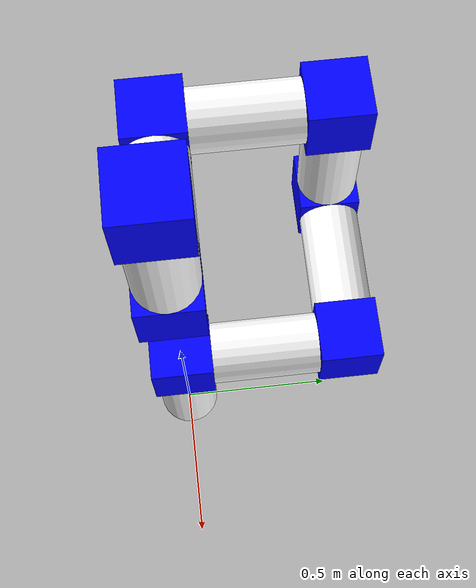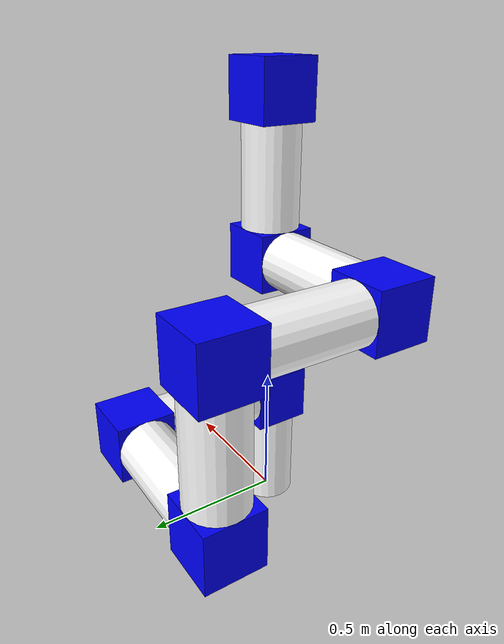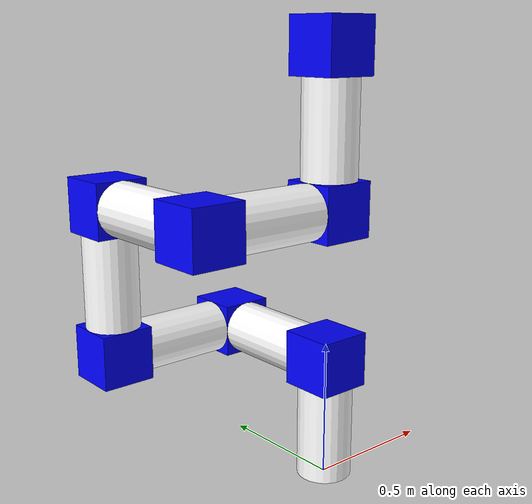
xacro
<?xml version="1.0" ?>
<!-- |    This document was autogenerated by xacro from unibot.xacro                   | -->
<!-- |    EDITING THIS FILE BY HAND IS NOT RECOMMENDED                                 | -->
<robot name="unibot">
  <!-- Tail Link -->
  <link name="a1_tail">
    <inertial>
      <origin rpy="0.0 0.0 0.0" xyz="0.0 0.0 0.25"/>
      <mass value="1.0"/>
      <inertia ixx="1.0" ixy="0.0" ixz="0.0" iyy="1.0" iyz="0.0" izz="1.0"/>
    </inertial>
    <visual>
      <origin rpy="0.0 0.0 0.0" xyz="0.0 0.0 0.25"/>
      <geometry>
        <cylinder length="0.5" radius="0.1"/>
      </geometry>
      <material name="White">
        <color rgba="1.0 1.0 1.0 1.0"/>
      </material>
    </visual>
    <collision>
      <origin rpy="0.0 0.0 0.0" xyz="0.0 0.0 0.25"/>
      <geometry>
        <cylinder length="0.5" radius="0.1"/>
      </geometry>
    </collision>
  </link>
  <gazebo reference="a1_tail">
    <selfCollide>true</selfCollide>
    <material>Gazebo/White</material>
  </gazebo>
  <!-- Head Link -->
  <link name="a1_head">
    <inertial>
      <origin rpy="0.0 0.0 0.0" xyz="0.0 0.0 0.0"/>
      <mass value="1.0"/>
      <inertia ixx="1.0" ixy="0.0" ixz="0.0" iyy="1.0" iyz="0.0" izz="1.0"/>
    </inertial>
    <visual>
      <origin rpy="0.0 0.0 0.0" xyz="0.0 0.0 0.1"/>
      <geometry>
        <box size="0.2 0.2 0.2"/>
      </geometry>
      <material name="Blue">
        <color rgba="0.0 0.0 1.0 1.0"/>
      </material>
    </visual>
    <collision>
      <origin rpy="0.0 0.0 0.0" xyz="0.0 0.0 0.1"/>
      <geometry>
        <box size="0.2 0.2 0.2"/>
      </geometry>
    </collision>
  </link>
  <gazebo reference="a1_head">
    <selfCollide>true</selfCollide>
    <material>Gazebo/Blue</material>
  </gazebo>
  <!-- Joint -->
  <joint name="a1_joint" type="revolute">
    <origin rpy="0.0 0.0 0.0" xyz="0.0 0.0 0.35"/>
    <parent link="a1_tail"/>
    <child link="a1_head"/>
    <axis xyz="0.0 0.0 1.0"/>
    <limit effort="1000000" lower="-1.5707963267948966" upper="1.5707963267948966" velocity="1000000"/>
  </joint>
  <!-- Tail Link -->
  <link name="a2_tail">
    <inertial>
      <origin rpy="0.0 0.0 0.0" xyz="0.0 0.0 0.25"/>
      <mass value="1.0"/>
      <inertia ixx="1.0" ixy="0.0" ixz="0.0" iyy="1.0" iyz="0.0" izz="1.0"/>
    </inertial>
    <visual>
      <origin rpy="0.0 0.0 0.0" xyz="0.0 0.0 0.25"/>
      <geometry>
        <cylinder length="0.5" radius="0.1"/>
      </geometry>
      <material name="White">
        <color rgba="1.0 1.0 1.0 1.0"/>
      </material>
    </visual>
    <collision>
      <origin rpy="0.0 0.0 0.0" xyz="0.0 0.0 0.25"/>
      <geometry>
        <cylinder length="0.5" radius="0.1"/>
      </geometry>
    </collision>
  </link>
  <gazebo reference="a2_tail">
    <selfCollide>true</selfCollide>
    <material>Gazebo/White</material>
  </gazebo>
  <!-- Head Link -->
  <link name="a2_head">
    <inertial>
      <origin rpy="0.0 0.0 0.0" xyz="0.0 0.0 0.0"/>
      <mass value="1.0"/>
      <inertia ixx="1.0" ixy="0.0" ixz="0.0" iyy="1.0" iyz="0.0" izz="1.0"/>
    </inertial>
    <visual>
      <origin rpy="0.0 0.0 0.0" xyz="0.0 0.0 0.1"/>
      <geometry>
        <box size="0.2 0.2 0.2"/>
      </geometry>
      <material name="Blue">
        <color rgba="0.0 0.0 1.0 1.0"/>
      </material>
    </visual>
    <collision>
      <origin rpy="0.0 0.0 0.0" xyz="0.0 0.0 0.1"/>
      <geometry>
        <box size="0.2 0.2 0.2"/>
      </geometry>
    </collision>
  </link>
  <gazebo reference="a2_head">
    <selfCollide>true</selfCollide>
    <material>Gazebo/Blue</material>
  </gazebo>
  <!-- Joint -->
  <joint name="a2_joint" type="revolute">
    <origin rpy="0.0 0.0 0.0" xyz="0.0 0.0 0.35"/>
    <parent link="a2_tail"/>
    <child link="a2_head"/>
    <axis xyz="0.0 0.0 1.0"/>
    <limit effort="1000000" lower="-1.5707963267948966" upper="1.5707963267948966" velocity="1000000"/>
  </joint>
  <!-- Tail Link -->
  <link name="a3_tail">
    <inertial>
      <origin rpy="0.0 0.0 0.0" xyz="0.0 0.0 0.25"/>
      <mass value="1.0"/>
      <inertia ixx="1.0" ixy="0.0" ixz="0.0" iyy="1.0" iyz="0.0" izz="1.0"/>
    </inertial>
    <visual>
      <origin rpy="0.0 0.0 0.0" xyz="0.0 0.0 0.25"/>
      <geometry>
        <cylinder length="0.5" radius="0.1"/>
      </geometry>
      <material name="White">
        <color rgba="1.0 1.0 1.0 1.0"/>
      </material>
    </visual>
    <collision>
      <origin rpy="0.0 0.0 0.0" xyz="0.0 0.0 0.25"/>
      <geometry>
        <cylinder length="0.5" radius="0.1"/>
      </geometry>
    </collision>
  </link>
  <gazebo reference="a3_tail">
    <selfCollide>true</selfCollide>
    <material>Gazebo/White</material>
  </gazebo>
  <!-- Head Link -->
  <link name="a3_head">
    <inertial>
      <origin rpy="0.0 0.0 0.0" xyz="0.0 0.0 0.0"/>
      <mass value="1.0"/>
      <inertia ixx="1.0" ixy="0.0" ixz="0.0" iyy="1.0" iyz="0.0" izz="1.0"/>
    </inertial>
    <visual>
      <origin rpy="0.0 0.0 0.0" xyz="0.0 0.0 0.1"/>
      <geometry>
        <box size="0.2 0.2 0.2"/>
      </geometry>
      <material name="Blue">
        <color rgba="0.0 0.0 1.0 1.0"/>
      </material>
    </visual>
    <collision>
      <origin rpy="0.0 0.0 0.0" xyz="0.0 0.0 0.1"/>
      <geometry>
        <box size="0.2 0.2 0.2"/>
      </geometry>
    </collision>
  </link>
  <gazebo reference="a3_head">
    <selfCollide>true</selfCollide>
    <material>Gazebo/Blue</material>
  </gazebo>
  <!-- Joint -->
  <joint name="a3_joint" type="revolute">
    <origin rpy="0.0 0.0 0.0" xyz="0.0 0.0 0.35"/>
    <parent link="a3_tail"/>
    <child link="a3_head"/>
    <axis xyz="0.0 0.0 1.0"/>
    <limit effort="1000000" lower="-1.5707963267948966" upper="1.5707963267948966" velocity="1000000"/>
  </joint>
  <!-- Tail Link -->
  <link name="a4_tail">
    <inertial>
      <origin rpy="0.0 0.0 0.0" xyz="0.0 0.0 0.25"/>
      <mass value="1.0"/>
      <inertia ixx="1.0" ixy="0.0" ixz="0.0" iyy="1.0" iyz="0.0" izz="1.0"/>
    </inertial>
    <visual>
      <origin rpy="0.0 0.0 0.0" xyz="0.0 0.0 0.25"/>
      <geometry>
        <cylinder length="0.5" radius="0.1"/>
      </geometry>
      <material name="White">
        <color rgba="1.0 1.0 1.0 1.0"/>
      </material>
    </visual>
    <collision>
      <origin rpy="0.0 0.0 0.0" xyz="0.0 0.0 0.25"/>
      <geometry>
        <cylinder length="0.5" radius="0.1"/>
      </geometry>
    </collision>
  </link>
  <gazebo reference="a4_tail">
    <selfCollide>true</selfCollide>
    <material>Gazebo/White</material>
  </gazebo>
  <!-- Head Link -->
  <link name="a4_head">
    <inertial>
      <origin rpy="0.0 0.0 0.0" xyz="0.0 0.0 0.0"/>
      <mass value="1.0"/>
      <inertia ixx="1.0" ixy="0.0" ixz="0.0" iyy="1.0" iyz="0.0" izz="1.0"/>
    </inertial>
    <visual>
      <origin rpy="0.0 0.0 0.0" xyz="0.0 0.0 0.1"/>
      <geometry>
        <box size="0.2 0.2 0.2"/>
      </geometry>
      <material name="Blue">
        <color rgba="0.0 0.0 1.0 1.0"/>
      </material>
    </visual>
    <collision>
      <origin rpy="0.0 0.0 0.0" xyz="0.0 0.0 0.1"/>
      <geometry>
        <box size="0.2 0.2 0.2"/>
      </geometry>
    </collision>
  </link>
  <gazebo reference="a4_head">
    <selfCollide>true</selfCollide>
    <material>Gazebo/Blue</material>
  </gazebo>
  <!-- Joint -->
  <joint name="a4_joint" type="revolute">
    <origin rpy="0.0 0.0 0.0" xyz="0.0 0.0 0.35"/>
    <parent link="a4_tail"/>
    <child link="a4_head"/>
    <axis xyz="0.0 0.0 1.0"/>
    <limit effort="1000000" lower="-1.5707963267948966" upper="1.5707963267948966" velocity="1000000"/>
  </joint>
  <!-- Tail Link -->
  <link name="a5_tail">
    <inertial>
      <origin rpy="0.0 0.0 0.0" xyz="0.0 0.0 0.25"/>
      <mass value="1.0"/>
      <inertia ixx="1.0" ixy="0.0" ixz="0.0" iyy="1.0" iyz="0.0" izz="1.0"/>
    </inertial>
    <visual>
      <origin rpy="0.0 0.0 0.0" xyz="0.0 0.0 0.25"/>
      <geometry>
        <cylinder length="0.5" radius="0.1"/>
      </geometry>
      <material name="White">
        <color rgba="1.0 1.0 1.0 1.0"/>
      </material>
    </visual>
    <collision>
      <origin rpy="0.0 0.0 0.0" xyz="0.0 0.0 0.25"/>
      <geometry>
        <cylinder length="0.5" radius="0.1"/>
      </geometry>
    </collision>
  </link>
  <gazebo reference="a5_tail">
    <selfCollide>true</selfCollide>
    <material>Gazebo/White</material>
  </gazebo>
  <!-- Head Link -->
  <link name="a5_head">
    <inertial>
      <origin rpy="0.0 0.0 0.0" xyz="0.0 0.0 0.0"/>
      <mass value="1.0"/>
      <inertia ixx="1.0" ixy="0.0" ixz="0.0" iyy="1.0" iyz="0.0" izz="1.0"/>
    </inertial>
    <visual>
      <origin rpy="0.0 0.0 0.0" xyz="0.0 0.0 0.1"/>
      <geometry>
        <box size="0.2 0.2 0.2"/>
      </geometry>
      <material name="Blue">
        <color rgba="0.0 0.0 1.0 1.0"/>
      </material>
    </visual>
    <collision>
      <origin rpy="0.0 0.0 0.0" xyz="0.0 0.0 0.1"/>
      <geometry>
        <box size="0.2 0.2 0.2"/>
      </geometry>
    </collision>
  </link>
  <gazebo reference="a5_head">
    <selfCollide>true</selfCollide>
    <material>Gazebo/Blue</material>
  </gazebo>
  <!-- Joint -->
  <joint name="a5_joint" type="revolute">
    <origin rpy="0.0 0.0 0.0" xyz="0.0 0.0 0.35"/>
    <parent link="a5_tail"/>
    <child link="a5_head"/>
    <axis xyz="0.0 0.0 1.0"/>
    <limit effort="1000000" lower="-1.5707963267948966" upper="1.5707963267948966" velocity="1000000"/>
  </joint>
  <!-- Tail Link -->
  <link name="a6_tail">
    <inertial>
      <origin rpy="0.0 0.0 0.0" xyz="0.0 0.0 0.25"/>
      <mass value="1.0"/>
      <inertia ixx="1.0" ixy="0.0" ixz="0.0" iyy="1.0" iyz="0.0" izz="1.0"/>
    </inertial>
    <visual>
      <origin rpy="0.0 0.0 0.0" xyz="0.0 0.0 0.25"/>
      <geometry>
        <cylinder length="0.5" radius="0.1"/>
      </geometry>
      <material name="White">
        <color rgba="1.0 1.0 1.0 1.0"/>
      </material>
    </visual>
    <collision>
      <origin rpy="0.0 0.0 0.0" xyz="0.0 0.0 0.25"/>
      <geometry>
        <cylinder length="0.5" radius="0.1"/>
      </geometry>
    </collision>
  </link>
  <gazebo reference="a6_tail">
    <selfCollide>true</selfCollide>
    <material>Gazebo/White</material>
  </gazebo>
  <!-- Head Link -->
  <link name="a6_head">
    <inertial>
      <origin rpy="0.0 0.0 0.0" xyz="0.0 0.0 0.0"/>
      <mass value="1.0"/>
      <inertia ixx="1.0" ixy="0.0" ixz="0.0" iyy="1.0" iyz="0.0" izz="1.0"/>
    </inertial>
    <visual>
      <origin rpy="0.0 0.0 0.0" xyz="0.0 0.0 0.1"/>
      <geometry>
        <box size="0.2 0.2 0.2"/>
      </geometry>
      <material name="Blue">
        <color rgba="0.0 0.0 1.0 1.0"/>
      </material>
    </visual>
    <collision>
      <origin rpy="0.0 0.0 0.0" xyz="0.0 0.0 0.1"/>
      <geometry>
        <box size="0.2 0.2 0.2"/>
      </geometry>
    </collision>
  </link>
  <gazebo reference="a6_head">
    <selfCollide>true</selfCollide>
    <material>Gazebo/Blue</material>
  </gazebo>
  <!-- Joint -->
  <joint name="a6_joint" type="revolute">
    <origin rpy="0.0 0.0 0.0" xyz="0.0 0.0 0.35"/>
    <parent link="a6_tail"/>
    <child link="a6_head"/>
    <axis xyz="0.0 0.0 1.0"/>
    <limit effort="1000000" lower="-1.5707963267948966" upper="1.5707963267948966" velocity="1000000"/>
  </joint>
  <!-- Tail Link -->
  <link name="a7_tail">
    <inertial>
      <origin rpy="0.0 0.0 0.0" xyz="0.0 0.0 0.25"/>
      <mass value="1.0"/>
      <inertia ixx="1.0" ixy="0.0" ixz="0.0" iyy="1.0" iyz="0.0" izz="1.0"/>
    </inertial>
    <visual>
      <origin rpy="0.0 0.0 0.0" xyz="0.0 0.0 0.25"/>
      <geometry>
        <cylinder length="0.5" radius="0.1"/>
      </geometry>
      <material name="White">
        <color rgba="1.0 1.0 1.0 1.0"/>
      </material>
    </visual>
    <collision>
      <origin rpy="0.0 0.0 0.0" xyz="0.0 0.0 0.25"/>
      <geometry>
        <cylinder length="0.5" radius="0.1"/>
      </geometry>
    </collision>
  </link>
  <gazebo reference="a7_tail">
    <selfCollide>true</selfCollide>
    <material>Gazebo/White</material>
  </gazebo>
  <!-- Head Link -->
  <link name="a7_head">
    <inertial>
      <origin rpy="0.0 0.0 0.0" xyz="0.0 0.0 0.0"/>
      <mass value="1.0"/>
      <inertia ixx="1.0" ixy="0.0" ixz="0.0" iyy="1.0" iyz="0.0" izz="1.0"/>
    </inertial>
    <visual>
      <origin rpy="0.0 0.0 0.0" xyz="0.0 0.0 0.1"/>
      <geometry>
        <box size="0.2 0.2 0.2"/>
      </geometry>
      <material name="Blue">
        <color rgba="0.0 0.0 1.0 1.0"/>
      </material>
    </visual>
    <collision>
      <origin rpy="0.0 0.0 0.0" xyz="0.0 0.0 0.1"/>
      <geometry>
        <box size="0.2 0.2 0.2"/>
      </geometry>
    </collision>
  </link>
  <gazebo reference="a7_head">
    <selfCollide>true</selfCollide>
    <material>Gazebo/Blue</material>
  </gazebo>
  <!-- Joint -->
  <joint name="a7_joint" type="revolute">
    <origin rpy="0.0 0.0 0.0" xyz="0.0 0.0 0.35"/>
    <parent link="a7_tail"/>
    <child link="a7_head"/>
    <axis xyz="0.0 0.0 1.0"/>
    <limit effort="1000000" lower="-1.5707963267948966" upper="1.5707963267948966" velocity="1000000"/>
  </joint>
  <link name="world"/>
  <gazebo reference="world">
    <static>true</static>
  </gazebo>
  <joint name="pin" type="fixed">
    <parent link="world"/>
    <child link="a1_tail"/>
  </joint>
  <joint name="a1_a2_joint" type="fixed">
    <origin rpy="-1.5707963267948966 0.0 0" xyz="0.0 0.1 0.1"/>
    <parent link="a1_head"/>
    <child link="a2_tail"/>
  </joint>
  <joint name="a2_a3_joint" type="fixed">
    <origin rpy="0.0 -1.5707963267948966 0" xyz="-0.1 0.0 0.1"/>
    <parent link="a2_head"/>
    <child link="a3_tail"/>
  </joint>
  <joint name="a3_a4_joint" type="fixed">
    <origin rpy="1.5707963267948966 0.0 0" xyz="0.0 -0.1 0.1"/>
    <parent link="a3_head"/>
    <child link="a4_tail"/>
  </joint>
  <joint name="a4_a5_joint" type="fixed">
    <origin rpy="0.0 -1.5707963267948966 0" xyz="-0.1 0.0 0.1"/>
    <parent link="a4_head"/>
    <child link="a5_tail"/>
  </joint>
  <joint name="a5_a6_joint" type="fixed">
    <origin rpy="1.5707963267948966 0.0 0" xyz="0.0 -0.1 0.1"/>
    <parent link="a5_head"/>
    <child link="a6_tail"/>
  </joint>
  <joint name="a6_a7_joint" type="fixed">
    <origin rpy="0.0 1.5707963267948966 0" xyz="0.1 0.0 0.1"/>
    <parent link="a6_head"/>
    <child link="a7_tail"/>
  </joint>
</robot>
